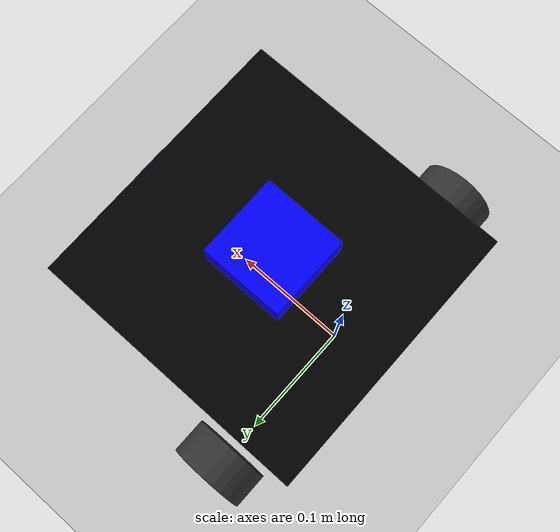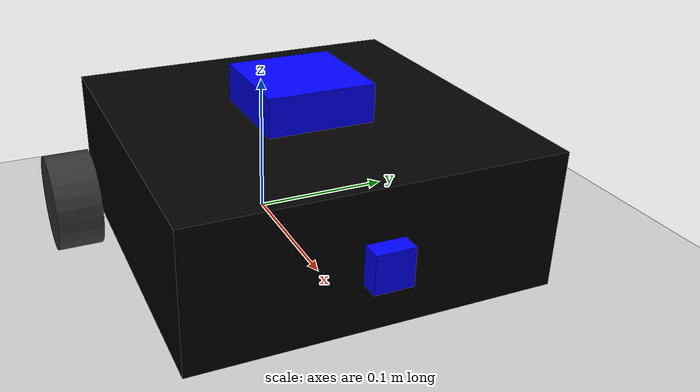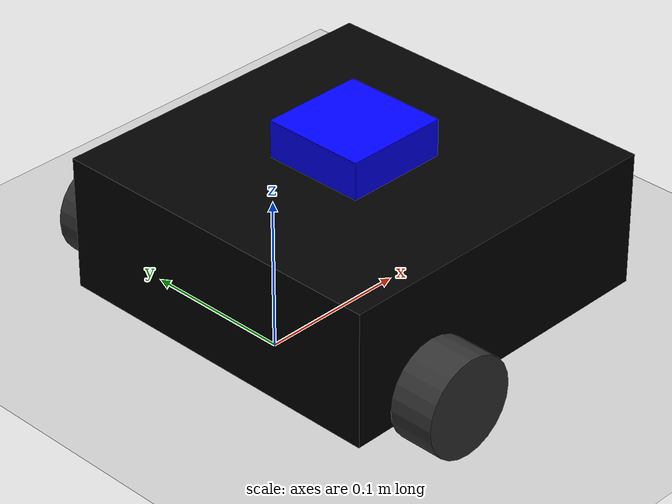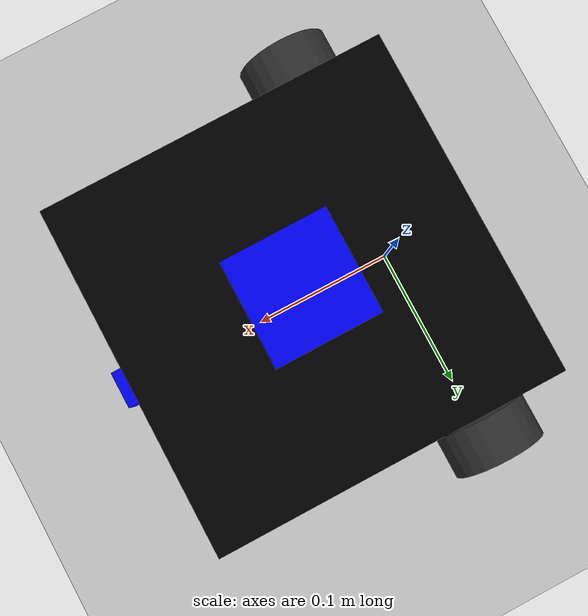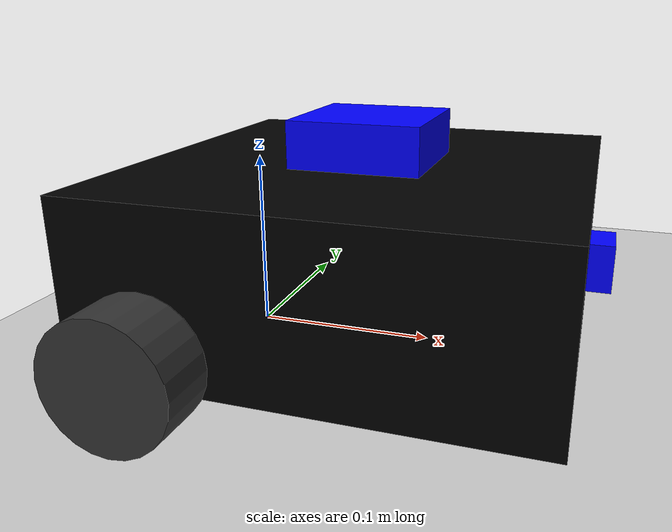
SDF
<?xml version="1.0" ?>
<sdf version="1.8">
  <world name="demo">
    <plugin
      filename="ignition-gazebo-physics-system"
      name="ignition::gazebo::systems::Physics">
    </plugin>
    <plugin
      filename="ignition-gazebo-sensors-system"
      name="ignition::gazebo::systems::Sensors">
      <render_engine>ogre2</render_engine>
    </plugin>
    <plugin
      filename="ignition-gazebo-scene-broadcaster-system"
      name="ignition::gazebo::systems::SceneBroadcaster">
    </plugin>
    <plugin
      filename="ignition-gazebo-user-commands-system"
      name="ignition::gazebo::systems::UserCommands">
    </plugin>
    <plugin
      filename="BasicSystem"
      name="ros_gz_example_gazebo::BasicSystem">
    </plugin>
    <plugin
      filename="FullSystem"
      name="ros_gz_example_gazebo::FullSystem">
    </plugin>

    <light name="sun" type="directional">
      <cast_shadows>true</cast_shadows>
      <pose>0 0 10 0 0 0</pose>
      <diffuse>0.8 0.8 0.8 1</diffuse>
      <specular>0.2 0.2 0.2 1</specular>
      <attenuation>
        <range>1000</range>
        <constant>0.9</constant>
        <linear>0.01</linear>
        <quadratic>0.001</quadratic>
      </attenuation>
      <direction>-0.5 0.1 -0.9</direction>
    </light>

    <model name="ground_plane">
      <static>true</static>
      <link name="link">
        <collision name="collision">
          <geometry>
            <plane>
              <normal>0 0 1</normal>
              <size>100 100</size>
            </plane>
          </geometry>
        </collision>
        <visual name="visual">
          <geometry>
            <plane>
              <normal>0 0 1</normal>
              <size>100 100</size>
            </plane>
          </geometry>
          <material>
            <ambient>0.8 0.8 0.8 1</ambient>
            <diffuse>0.8 0.8 0.8 1</diffuse>
            <specular>0.8 0.8 0.8 1</specular>
          </material>
        </visual>
      </link>
    </model>

    <model name="diff_drive">
      <self_collide>true</self_collide>
      <pose>0 0 0.0325 0 0 0</pose>
      <include merge="true">
        <uri>package://ros_gz_example_description/models/diff_drive</uri>
      </include>

      <plugin
        filename="ignition-gazebo-joint-state-publisher-system"
        name="ignition::gazebo::systems::JointStatePublisher">
      </plugin>

      <plugin
        filename="ignition-gazebo-pose-publisher-system"
        name="ignition::gazebo::systems::PosePublisher">
        <publish_link_pose>true</publish_link_pose>
        <use_pose_vector_msg>true</use_pose_vector_msg>
        <static_publisher>true</static_publisher>
        <static_update_frequency>1</static_update_frequency>
      </plugin>

      <plugin
        filename="ignition-gazebo-odometry-publisher-system"
        name="ignition::gazebo::systems::OdometryPublisher">
        <odom_frame>diff_drive/odom</odom_frame>
        <robot_base_frame>diff_drive</robot_base_frame>
      </plugin>
    </model>

<!-- Handles keypresses and publishes Twist messages to control the diff_drive model. -->
        <!-- Moving Forward-->
        <plugin filename="libignition-gazebo-triggered-publisher-system.so"
            name="ignition::gazebo::systems::TriggeredPublisher">
            <input type="ignition.msgs.Int32" topic="/keyboard/keypress">
                <match field="data">16777235</match>
            </input>
            <output type="ignition.msgs.Twist" topic="/model/diff_drive/cmd_vel">
                linear: {x: 1}, angular: {z: 0.0}
            </output>
        </plugin>

        <!-- Moving Backward-->
        <plugin filename="libignition-gazebo-triggered-publisher-system.so"
            name="ignition::gazebo::systems::TriggeredPublisher">
            <input type="ignition.msgs.Int32" topic="/keyboard/keypress">
                <match field="data">16777237</match>
            </input>
            <output type="ignition.msgs.Twist" topic="/model/diff_drive/cmd_vel">
                linear: {x: -1}, angular: {z: 0.0}
            </output>
        </plugin>

        <!-- Rotating right-->
        <plugin filename="libignition-gazebo-triggered-publisher-system.so"
            name="ignition::gazebo::systems::TriggeredPublisher">
            <input type="ignition.msgs.Int32" topic="/keyboard/keypress">
                <match field="data">16777236</match>
            </input>
            <output type="ignition.msgs.Twist" topic="/model/diff_drive/cmd_vel">
                linear: {x: 0.0}, angular: {z: -1}
            </output>
        </plugin>

        <!--Rotating
        left-->
        <plugin filename="libignition-gazebo-triggered-publisher-system.so"
            name="ignition::gazebo::systems::TriggeredPublisher">
            <input type="ignition.msgs.Int32" topic="/keyboard/keypress">
                <match field="data">16777234</match>
            </input>
            <output type="ignition.msgs.Twist" topic="/model/diff_drive/cmd_vel">
                linear: {x: 0.0}, angular: {z: 1}
            </output>
        </plugin>
  </world>
</sdf>

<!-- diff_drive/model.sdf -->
<sdf version="1.8">
    <model name='diff_drive'>

      <!-- Placed at center of wheels -->
      <link name="base_link">
      </link>

      <joint name="chassis_joint" type="fixed">
        <parent>base_link</parent>
        <child>chassis</child>
        <pose relative_to='base_link'>-0.05 0 -0.0205 0 0 0</pose>
      </joint>

      <link name='chassis'>
        <pose relative_to='chassis_joint'>0.1175 0 0.045 0 0 0</pose>
        <inertial>
          <mass>10</mass>
          <inertia>
            <ixx>0.126164</ixx>
            <ixy>0</ixy>
            <ixz>0</ixz>
            <iyy>0.416519</iyy>
            <iyz>0</iyz>
            <izz>0.481014</izz>
          </inertia>
        </inertial>
        <visual name='visual_chassis'>
          <geometry>
            <box>
              <!-- Length width height -->
              <size>0.235 0.235 0.09</size>
            </box>
          </geometry>
          <material>
            <ambient>0 0 0 1</ambient>
            <diffuse>0 0 0 1</diffuse>
            <specular>0.0 0.0 0.0 1</specular>
          </material>
        </visual>
        <collision name='collision_chassis'>
          <geometry>
            <box>
              <size>0.235 0.235 0.009</size>
            </box>
          </geometry>
        </collision>
      </link>

      <!-- Left Wheel -->
      <joint name='left_wheel_joint' type='revolute'>
        <parent>base_link</parent>
        <child>left_wheel</child>
        <!-- Wheel is 14 cm out from center of base link
        so that sphere is not flat it is turned by pi/2 rad -->
        <pose relative_to="base_link">0 0.14 0 0 0 0</pose>

        <axis>
          <xyz>0 1 0</xyz>
          <limit>
            <lower>-1.79769e+308</lower>
            <upper>1.79769e+308</upper>
          </limit>
        </axis>
      </joint>

       <link name='left_wheel'>
       <pose relative_to="left_wheel_joint">0 0 0 1.5707 0 0</pose>
        <inertial>
          <mass>0.1</mass>
          <inertia>
            <ixx>0.145833</ixx>
            <ixy>0</ixy>
            <ixz>0</ixz>
            <iyy>0.145833</iyy>
            <iyz>0</iyz>
            <izz>0.125</izz>
          </inertia>
        </inertial>
        <visual name='visual_left_wheel'>
          <geometry>
            <cylinder>
              <!-- 6.5 cmd diameter and 3 cm thick -->
              <radius>0.0325</radius>
              <length>0.03</length>
            </cylinder>
          </geometry>
          <material>
            <ambient>0.2 0.2 0.2 1</ambient>
            <diffuse>0.2 0.2 0.2 1</diffuse>
            <specular>0.2 0.2 0.2 1</specular>
          </material>
        </visual>
        <collision name='collision_left_wheel'>
          <geometry>
            <cylinder>
              <!-- 6.5 cmd diameter and 3 cm thick -->
              <radius>0.0325</radius>
              <length>0.03</length>
            </cylinder>
          </geometry>
        </collision>
      </link>

      <!-- Right wheel -->
      <joint name='right_wheel_joint' type='revolute'>
        <parent>base_link</parent>
        <child>right_wheel</child>
        <!-- Wheel is 14 cm out from center of base link
        so that sphere is not flat it is turned by pi/2 rad -->
      <pose relative_to="base_link">0 -0.14 0 0 0 0</pose>
        <axis>
          <xyz>0 1 0</xyz>
          <limit>
            <lower>-1.79769e+308</lower>
            <upper>1.79769e+308</upper>
          </limit>
        </axis>
      </joint>

      <link name='right_wheel'>
      <pose relative_to="right_wheel_joint">0 0 0 -1.5707 0 0</pose>
       <inertial>
          <mass>0.1</mass>
          <inertia>
            <ixx>0.145833</ixx>
            <ixy>0</ixy>
            <ixz>0</ixz>
            <iyy>0.145833</iyy>
            <iyz>0</iyz>
            <izz>0.125</izz>
          </inertia>
        </inertial>
        <visual name='visual_left_wheel'>
          <geometry>
            <cylinder>
              <!-- 6.5 cmd diameter and 3 cm thick -->
              <radius>0.0325</radius>
              <length>0.03</length>
            </cylinder>

          </geometry>
          <material>
            <ambient>0.2 0.2 0.2 1</ambient>
            <diffuse>0.2 0.2 0.2 1</diffuse>
            <specular>0.2 0.2 0.2 1</specular>
          </material>
        </visual>
        <collision name='collision_left_wheel'>
          <geometry>
             <cylinder>
              <!-- 6.5 cmd diameter and 3 cm thick -->
              <radius>0.0325</radius>
              <length>0.03</length>
            </cylinder>
          </geometry>
        </collision>
      </link>

      <joint name='caster_wheel_joint' type='ball'>
        <parent>chassis</parent>
        <child>caster_wheel</child>
      </joint>

      <link name='caster_wheel'>
      <!-- 9 cm forward from center of chassis and half height of chassis plus half heigh of caster wheel 1 cm -->
        <pose relative_to="chassis"> 0.09 0 -0.046 0 0 0</pose>
        <inertial>
          <mass>1</mass>
          <inertia>
            <ixx>0.1</ixx>
            <ixy>0</ixy>
            <ixz>0</ixz>
            <iyy>0.1</iyy>
            <iyz>0</iyz>
            <izz>0.1</izz>
          </inertia>
        </inertial>
        <visual name='visual_caster'>
          <geometry>
            <sphere>
              <radius>0.01</radius>
            </sphere>
          </geometry>
          <material>
            <ambient>0.2 0.2 0.2 1</ambient>
            <diffuse>0.2 0.2 0.2 1</diffuse>
            <specular>0.2 0.2 0.2 1</specular>
          </material>
        </visual>
        <collision name='collision_caster'>
          <geometry>
            <sphere>
              <radius>0.01</radius>
            </sphere>
          </geometry>
        </collision>
      </link>

      <!-- LIDAR -->
      <joint name='lidar_joint' type='fixed'>
        <parent>chassis</parent>
        <child>lidar_link</child>
      </joint>

      <link name="lidar_link">
        <pose relative_to="chassis">0 0 0.045 0 0 0</pose>
        <inertial>
          <mass>0.1</mass>
          <inertia>
            <ixx>0.000166667</ixx>
            <iyy>0.000166667</iyy>
            <izz>0.000166667</izz>
          </inertia>
        </inertial>
        <collision name="collision">
          <geometry>
            <box>
              <size>0.07 0.07 0.05</size>
            </box>
          </geometry>
        </collision>
        <visual name="visual">
          <geometry>
            <box>
              <size>0.07 0.07 0.05</size>
            </box>
          </geometry>
          <material>
            <ambient>0 0 1 1</ambient>
            <diffuse>0 0 1 1</diffuse>
            <specular>0.0 0.0 1 1</specular>
          </material>
        </visual>
        <sensor name='gpu_lidar' type='gpu_lidar'>
          <pose>0 0 0 0 0 0</pose>
          <topic>scan</topic>
          <ignition_frame_id>diff_drive/lidar_link</ignition_frame_id>
          <update_rate>10</update_rate>
          <lidar>
            <scan>
              <horizontal>
                <samples>640</samples>
                <resolution>1</resolution>
                <min_angle>-3.14</min_angle>
                <max_angle>3.14</max_angle>
              </horizontal>
              <vertical>
                <samples>1</samples>
                <resolution>1</resolution>
                <min_angle>0.0</min_angle>
                <max_angle>0.0</max_angle>
              </vertical>
            </scan>
            <range>
              <min>0.08</min>
              <max>10.0</max>
              <resolution>0.01</resolution>
            </range>
          </lidar>
          <visualize>true</visualize>
        </sensor>
      </link>

      <!-- CAMERA -->
      <joint name='camera_joint' type='fixed'>
        <parent>chassis</parent>
        <child>camera_link</child>
      </joint>

      <link name="camera_link">
        <pose relative_to="chassis">0.1175 0 0 0 0 0</pose>
        <visual name="visual">
          <geometry>
            <box>
              <size>0.025 0.025 0.025</size>
            </box>
          </geometry>
          <material>
            <ambient>0 0 1 1</ambient>
            <diffuse>0 0 1 1</diffuse>
            <specular>0.0 0.0 1 1</specular>
          </material>
        </visual>
        <sensor name='camera' type='camera'>
          <pose>0 0 0 0 0 0</pose>
          <ignition_frame_id>diff_drive/camera_link</ignition_frame_id>
          <visualize>true</visualize>
          <update_rate>10</update_rate>
          <topic>image</topic>
          <camera>
            <always_on>1</always_on>
            <horizontal_fov>1.089</horizontal_fov>
            <image>
              <format>R8G8B8</format>
              <width>640</width>
              <height>480</height>
            </image>
          </camera>
          <clip>
            <near>0.05</near>
            <far>8.0</far>
          </clip>
        </sensor>
      </link>

      <joint name='camera_optical_joint' type='fixed'>
        <parent>camera_link</parent>
        <child>camera_link_optical</child>
      </joint>

      <link name="camera_link_optical">
        <pose>0 0 0 -1.57079632679 0 -1.57079632679</pose>
      </link>

      <ros2_control name="IgnitionSystem" type="system">
        <hardware>
          <plugin>ign_ros2_control/IgnitionSystem</plugin>
        </hardware>
        <joint name="left_wheel_joint">
          <command_interface name="velocity">
            <param name="min">-10</param>
            <param name="max">10</param>
          </command_interface>
          <state_interface name="position"/>
          <state_interface name="velocity"/>
        </joint>
        <joint name="right_wheel_joint">
          <command_interface name="velocity">
            <param name="min">-10</param>
            <param name="max">10</param>
          </command_interface>
          <state_interface name="position"/>
          <state_interface name="velocity"/>
        </joint>
      </ros2_control>

      <plugin filename="ign_ros2_control-system" name="ign_ros2_control::IgnitionROS2ControlPlugin">
            <parameters>/home/mikaeltrana/Documents/robot/my_bot/install/ros_gz_example_bringup/share/ros_gz_example_bringup/config/my_controller.yaml</parameters>
      </plugin>

      <!-- Needed for keyboard navigation in Gazebo -->
    </model>
</sdf>
